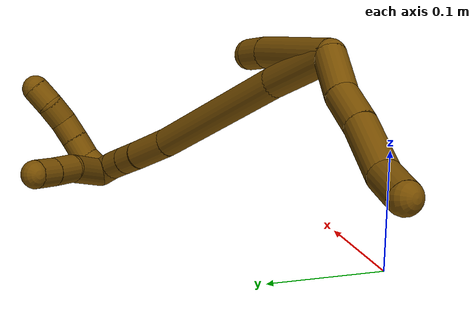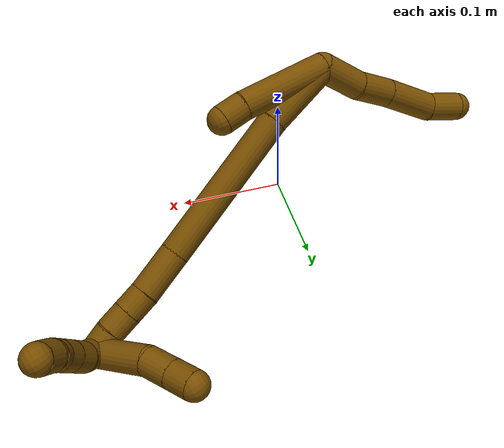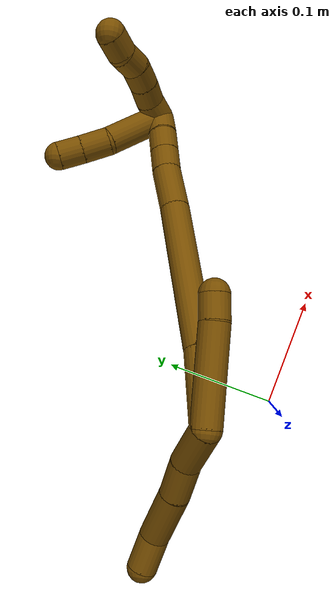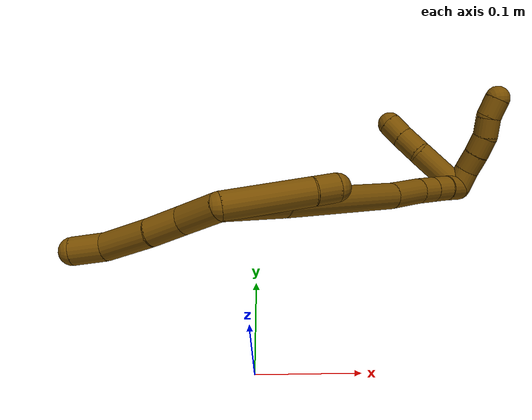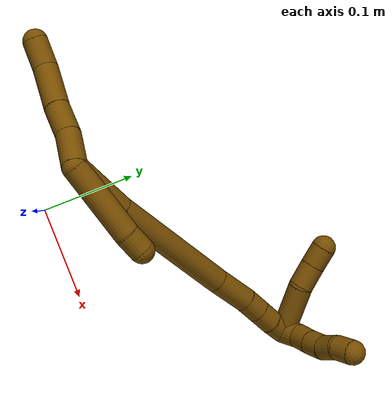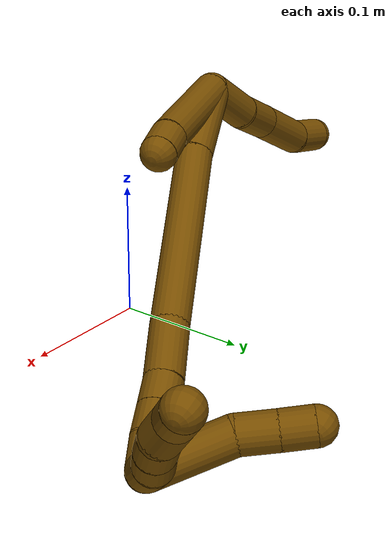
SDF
<sdf version="1.7">
 <world name="default">
  <model name="12">
   <static>0</static>
   <link name="12">
    <collision name="collision-cylinder-e_1_2_8">
     <pose>-0.003566 0.01494 0.012186 -0.886587 -0.182901 0.087031</pose>
     <geometry><cylinder><radius>0.0125</radius><length>0.039214</length></cylinder></geometry>
     <surface>
      <friction><ode><mu>1.16</mu><mu2>1.16</mu2><slip1>0</slip1><slip2>0</slip2></ode></friction>
      <contact><ode><kp>1e+06</kp><kd>1</kd><max_vel>0</max_vel><min_depth>0.001</min_depth></ode></contact>
     </surface>
    </collision>
    <visual name="visual-cylinder-e_1_2_8">
     <pose>-0.003566 0.01494 0.012186 -0.886587 -0.182901 0.087031</pose>
     <geometry><cylinder><radius>0.0125</radius><length>0.039214</length></cylinder></geometry>
     <material><ambient>0.466667 0.301961 0 1</ambient></material>
    </visual>
    <collision name="collision-cylinder-e_2_8_9">
     <pose>-0.010713 0.039841 0.03678 -0.67642 -0.221364 0.078139</pose>
     <geometry><cylinder><radius>0.0125</radius><length>0.032618</length></cylinder></geometry>
     <surface>
      <friction><ode><mu>1.16</mu><mu2>1.16</mu2><slip1>0</slip1><slip2>0</slip2></ode></friction>
      <contact><ode><kp>1e+06</kp><kd>1</kd><max_vel>0</max_vel><min_depth>0.001</min_depth></ode></contact>
     </surface>
    </collision>
    <visual name="visual-cylinder-e_2_8_9">
     <pose>-0.010713 0.039841 0.03678 -0.67642 -0.221364 0.078139</pose>
     <geometry><cylinder><radius>0.0125</radius><length>0.032618</length></cylinder></geometry>
     <material><ambient>0.466667 0.301961 0 1</ambient></material>
    </visual>
    <collision name="collision-cylinder-e_3_9_10">
     <pose>-0.018243 0.065972 0.066358 -0.755423 -0.165881 0.065943</pose>
     <geometry><cylinder><radius>0.0125</radius><length>0.047829</length></cylinder></geometry>
     <surface>
      <friction><ode><mu>1.16</mu><mu2>1.16</mu2><slip1>0</slip1><slip2>0</slip2></ode></friction>
      <contact><ode><kp>1e+06</kp><kd>1</kd><max_vel>0</max_vel><min_depth>0.001</min_depth></ode></contact>
     </surface>
    </collision>
    <visual name="visual-cylinder-e_3_9_10">
     <pose>-0.018243 0.065972 0.066358 -0.755423 -0.165881 0.065943</pose>
     <geometry><cylinder><radius>0.0125</radius><length>0.047829</length></cylinder></geometry>
     <material><ambient>0.466667 0.301961 0 1</ambient></material>
    </visual>
    <collision name="collision-cylinder-e_4_10_6">
     <pose>-0.022654 0.089112 0.096995 -0.477552 -0.030482 0.00742</pose>
     <geometry><cylinder><radius>0.0125</radius><length>0.030339</length></cylinder></geometry>
     <surface>
      <friction><ode><mu>1.16</mu><mu2>1.16</mu2><slip1>0</slip1><slip2>0</slip2></ode></friction>
      <contact><ode><kp>1e+06</kp><kd>1</kd><max_vel>0</max_vel><min_depth>0.001</min_depth></ode></contact>
     </surface>
    </collision>
    <visual name="visual-cylinder-e_4_10_6">
     <pose>-0.022654 0.089112 0.096995 -0.477552 -0.030482 0.00742</pose>
     <geometry><cylinder><radius>0.0125</radius><length>0.030339</length></cylinder></geometry>
     <material><ambient>0.466667 0.301961 0 1</ambient></material>
    </visual>
    <collision name="collision-cylinder-e_1_2_11">
     <pose>0.002961 -0.002346 -0.039321 3.082 0.075037 1.79935</pose>
     <geometry><cylinder><radius>0.0125</radius><length>0.079005</length></cylinder></geometry>
     <surface>
      <friction><ode><mu>1.16</mu><mu2>1.16</mu2><slip1>0</slip1><slip2>0</slip2></ode></friction>
      <contact><ode><kp>1e+06</kp><kd>1</kd><max_vel>0</max_vel><min_depth>0.001</min_depth></ode></contact>
     </surface>
    </collision>
    <visual name="visual-cylinder-e_1_2_11">
     <pose>0.002961 -0.002346 -0.039321 3.082 0.075037 1.79935</pose>
     <geometry><cylinder><radius>0.0125</radius><length>0.079005</length></cylinder></geometry>
     <material><ambient>0.466667 0.301961 0 1</ambient></material>
    </visual>
    <collision name="collision-cylinder-e_2_11_5">
     <pose>0.006798 -0.003997 -0.08908 -3.07504 0.083453 -1.79536</pose>
     <geometry><cylinder><radius>0.0125</radius><length>0.020995</length></cylinder></geometry>
     <surface>
      <friction><ode><mu>1.16</mu><mu2>1.16</mu2><slip1>0</slip1><slip2>0</slip2></ode></friction>
      <contact><ode><kp>1e+06</kp><kd>1</kd><max_vel>0</max_vel><min_depth>0.001</min_depth></ode></contact>
     </surface>
    </collision>
    <visual name="visual-cylinder-e_2_11_5">
     <pose>0.006798 -0.003997 -0.08908 -3.07504 0.083453 -1.79536</pose>
     <geometry><cylinder><radius>0.0125</radius><length>0.020995</length></cylinder></geometry>
     <material><ambient>0.466667 0.301961 0 1</ambient></material>
    </visual>
    <collision name="collision-cylinder-e_1_2_12">
     <pose>-0.000447 0.009651 -0.029996 -2.83031 -0.01417 0.090246</pose>
     <geometry><cylinder><radius>0.0125</radius><length>0.063026</length></cylinder></geometry>
     <surface>
      <friction><ode><mu>1.16</mu><mu2>1.16</mu2><slip1>0</slip1><slip2>0</slip2></ode></friction>
      <contact><ode><kp>1e+06</kp><kd>1</kd><max_vel>0</max_vel><min_depth>0.001</min_depth></ode></contact>
     </surface>
    </collision>
    <visual name="visual-cylinder-e_1_2_12">
     <pose>-0.000447 0.009651 -0.029996 -2.83031 -0.01417 0.090246</pose>
     <geometry><cylinder><radius>0.0125</radius><length>0.063026</length></cylinder></geometry>
     <material><ambient>0.466667 0.301961 0 1</ambient></material>
    </visual>
    <collision name="collision-cylinder-e_2_12_13">
     <pose>-8.7e-05 0.046592 -0.122395 -2.72934 0.011837 -0.056594</pose>
     <geometry><cylinder><radius>0.0125</radius><length>0.13623</length></cylinder></geometry>
     <surface>
      <friction><ode><mu>1.16</mu><mu2>1.16</mu2><slip1>0</slip1><slip2>0</slip2></ode></friction>
      <contact><ode><kp>1e+06</kp><kd>1</kd><max_vel>0</max_vel><min_depth>0.001</min_depth></ode></contact>
     </surface>
    </collision>
    <visual name="visual-cylinder-e_2_12_13">
     <pose>-8.7e-05 0.046592 -0.122395 -2.72934 0.011837 -0.056594</pose>
     <geometry><cylinder><radius>0.0125</radius><length>0.13623</length></cylinder></geometry>
     <material><ambient>0.466667 0.301961 0 1</ambient></material>
    </visual>
    <collision name="collision-cylinder-e_3_13_14">
     <pose>0.00237 0.0814 -0.203316 -2.7559 0.082414 -0.416168</pose>
     <geometry><cylinder><radius>0.0125</radius><length>0.040106</length></cylinder></geometry>
     <surface>
      <friction><ode><mu>1.16</mu><mu2>1.16</mu2><slip1>0</slip1><slip2>0</slip2></ode></friction>
      <contact><ode><kp>1e+06</kp><kd>1</kd><max_vel>0</max_vel><min_depth>0.001</min_depth></ode></contact>
     </surface>
    </collision>
    <visual name="visual-cylinder-e_3_13_14">
     <pose>0.00237 0.0814 -0.203316 -2.7559 0.082414 -0.416168</pose>
     <geometry><cylinder><radius>0.0125</radius><length>0.040106</length></cylinder></geometry>
     <material><ambient>0.466667 0.301961 0 1</ambient></material>
    </visual>
    <collision name="collision-cylinder-e_4_14_15">
     <pose>0.004379 0.09199 -0.231514 -2.83432 0.035201 -0.226371</pose>
     <geometry><cylinder><radius>0.0125</radius><length>0.020325</length></cylinder></geometry>
     <surface>
      <friction><ode><mu>1.16</mu><mu2>1.16</mu2><slip1>0</slip1><slip2>0</slip2></ode></friction>
      <contact><ode><kp>1e+06</kp><kd>1</kd><max_vel>0</max_vel><min_depth>0.001</min_depth></ode></contact>
     </surface>
    </collision>
    <visual name="visual-cylinder-e_4_14_15">
     <pose>0.004379 0.09199 -0.231514 -2.83432 0.035201 -0.226371</pose>
     <geometry><cylinder><radius>0.0125</radius><length>0.020325</length></cylinder></geometry>
     <material><ambient>0.466667 0.301961 0 1</ambient></material>
    </visual>
    <collision name="collision-cylinder-e_5_15_16">
     <pose>0.005039 0.098106 -0.250742 -2.833 0.030227 -0.193754</pose>
     <geometry><cylinder><radius>0.0125</radius><length>0.020052</length></cylinder></geometry>
     <surface>
      <friction><ode><mu>1.16</mu><mu2>1.16</mu2><slip1>0</slip1><slip2>0</slip2></ode></friction>
      <contact><ode><kp>1e+06</kp><kd>1</kd><max_vel>0</max_vel><min_depth>0.001</min_depth></ode></contact>
     </surface>
    </collision>
    <visual name="visual-cylinder-e_5_15_16">
     <pose>0.005039 0.098106 -0.250742 -2.833 0.030227 -0.193754</pose>
     <geometry><cylinder><radius>0.0125</radius><length>0.020052</length></cylinder></geometry>
     <material><ambient>0.466667 0.301961 0 1</ambient></material>
    </visual>
    <collision name="collision-cylinder-e_6_16_1">
     <pose>0.005395 0.10529 -0.269536 -2.72056 0.005225 -0.02445</pose>
     <geometry><cylinder><radius>0.0125</radius><length>0.02026</length></cylinder></geometry>
     <surface>
      <friction><ode><mu>1.16</mu><mu2>1.16</mu2><slip1>0</slip1><slip2>0</slip2></ode></friction>
      <contact><ode><kp>1e+06</kp><kd>1</kd><max_vel>0</max_vel><min_depth>0.001</min_depth></ode></contact>
     </surface>
    </collision>
    <visual name="visual-cylinder-e_6_16_1">
     <pose>0.005395 0.10529 -0.269536 -2.72056 0.005225 -0.02445</pose>
     <geometry><cylinder><radius>0.0125</radius><length>0.02026</length></cylinder></geometry>
     <material><ambient>0.466667 0.301961 0 1</ambient></material>
    </visual>
    <collision name="collision-cylinder-e_1_1_17">
     <pose>0.013865 0.105994 -0.282948 2.45205 1.0003 1.97886</pose>
     <geometry><cylinder><radius>0.0125</radius><length>0.02</length></cylinder></geometry>
     <surface>
      <friction><ode><mu>1.16</mu><mu2>1.16</mu2><slip1>0</slip1><slip2>0</slip2></ode></friction>
      <contact><ode><kp>1e+06</kp><kd>1</kd><max_vel>0</max_vel><min_depth>0.001</min_depth></ode></contact>
     </surface>
    </collision>
    <visual name="visual-cylinder-e_1_1_17">
     <pose>0.013865 0.105994 -0.282948 2.45205 1.0003 1.97886</pose>
     <geometry><cylinder><radius>0.0125</radius><length>0.02</length></cylinder></geometry>
     <material><ambient>0.466667 0.301961 0 1</ambient></material>
    </visual>
    <collision name="collision-cylinder-e_2_17_18">
     <pose>0.029872 0.096972 -0.290458 2.11011 0.861905 1.36282</pose>
     <geometry><cylinder><radius>0.0125</radius><length>0.02</length></cylinder></geometry>
     <surface>
      <friction><ode><mu>1.16</mu><mu2>1.16</mu2><slip1>0</slip1><slip2>0</slip2></ode></friction>
      <contact><ode><kp>1e+06</kp><kd>1</kd><max_vel>0</max_vel><min_depth>0.001</min_depth></ode></contact>
     </surface>
    </collision>
    <visual name="visual-cylinder-e_2_17_18">
     <pose>0.029872 0.096972 -0.290458 2.11011 0.861905 1.36282</pose>
     <geometry><cylinder><radius>0.0125</radius><length>0.02</length></cylinder></geometry>
     <material><ambient>0.466667 0.301961 0 1</ambient></material>
    </visual>
    <collision name="collision-cylinder-e_3_18_19">
     <pose>0.045476 0.086144 -0.296682 2.07335 0.929489 1.40628</pose>
     <geometry><cylinder><radius>0.0125</radius><length>0.02</length></cylinder></geometry>
     <surface>
      <friction><ode><mu>1.16</mu><mu2>1.16</mu2><slip1>0</slip1><slip2>0</slip2></ode></friction>
      <contact><ode><kp>1e+06</kp><kd>1</kd><max_vel>0</max_vel><min_depth>0.001</min_depth></ode></contact>
     </surface>
    </collision>
    <visual name="visual-cylinder-e_3_18_19">
     <pose>0.045476 0.086144 -0.296682 2.07335 0.929489 1.40628</pose>
     <geometry><cylinder><radius>0.0125</radius><length>0.02</length></cylinder></geometry>
     <material><ambient>0.466667 0.301961 0 1</ambient></material>
    </visual>
    <collision name="collision-cylinder-e_4_19_20">
     <pose>0.062704 0.077079 -0.300253 1.74928 1.17195 1.34238</pose>
     <geometry><cylinder><radius>0.0125</radius><length>0.02</length></cylinder></geometry>
     <surface>
      <friction><ode><mu>1.16</mu><mu2>1.16</mu2><slip1>0</slip1><slip2>0</slip2></ode></friction>
      <contact><ode><kp>1e+06</kp><kd>1</kd><max_vel>0</max_vel><min_depth>0.001</min_depth></ode></contact>
     </surface>
    </collision>
    <visual name="visual-cylinder-e_4_19_20">
     <pose>0.062704 0.077079 -0.300253 1.74928 1.17195 1.34238</pose>
     <geometry><cylinder><radius>0.0125</radius><length>0.02</length></cylinder></geometry>
     <material><ambient>0.466667 0.301961 0 1</ambient></material>
    </visual>
    <collision name="collision-cylinder-e_5_20_4">
     <pose>0.080349 0.069293 -0.304578 2.31289 1.00284 1.78923</pose>
     <geometry><cylinder><radius>0.0125</radius><length>0.02</length></cylinder></geometry>
     <surface>
      <friction><ode><mu>1.16</mu><mu2>1.16</mu2><slip1>0</slip1><slip2>0</slip2></ode></friction>
      <contact><ode><kp>1e+06</kp><kd>1</kd><max_vel>0</max_vel><min_depth>0.001</min_depth></ode></contact>
     </surface>
    </collision>
    <visual name="visual-cylinder-e_5_20_4">
     <pose>0.080349 0.069293 -0.304578 2.31289 1.00284 1.78923</pose>
     <geometry><cylinder><radius>0.0125</radius><length>0.02</length></cylinder></geometry>
     <material><ambient>0.466667 0.301961 0 1</ambient></material>
    </visual>
    <collision name="collision-cylinder-e_1_1_21">
     <pose>0.025606 0.116935 -0.262615 -0.434624 0.846788 -0.198353</pose>
     <geometry><cylinder><radius>0.0125</radius><length>0.053815</length></cylinder></geometry>
     <surface>
      <friction><ode><mu>1.16</mu><mu2>1.16</mu2><slip1>0</slip1><slip2>0</slip2></ode></friction>
      <contact><ode><kp>1e+06</kp><kd>1</kd><max_vel>0</max_vel><min_depth>0.001</min_depth></ode></contact>
     </surface>
    </collision>
    <visual name="visual-cylinder-e_1_1_21">
     <pose>0.025606 0.116935 -0.262615 -0.434624 0.846788 -0.198353</pose>
     <geometry><cylinder><radius>0.0125</radius><length>0.053815</length></cylinder></geometry>
     <material><ambient>0.466667 0.301961 0 1</ambient></material>
    </visual>
    <collision name="collision-cylinder-e_2_21_22">
     <pose>0.055049 0.13073 -0.241038 -0.860493 0.841502 -0.405077</pose>
     <geometry><cylinder><radius>0.0125</radius><length>0.024905</length></cylinder></geometry>
     <surface>
      <friction><ode><mu>1.16</mu><mu2>1.16</mu2><slip1>0</slip1><slip2>0</slip2></ode></friction>
      <contact><ode><kp>1e+06</kp><kd>1</kd><max_vel>0</max_vel><min_depth>0.001</min_depth></ode></contact>
     </surface>
    </collision>
    <visual name="visual-cylinder-e_2_21_22">
     <pose>0.055049 0.13073 -0.241038 -0.860493 0.841502 -0.405077</pose>
     <geometry><cylinder><radius>0.0125</radius><length>0.024905</length></cylinder></geometry>
     <material><ambient>0.466667 0.301961 0 1</ambient></material>
    </visual>
    <collision name="collision-cylinder-e_3_22_3">
     <pose>0.072569 0.142064 -0.231158 -0.845573 0.885024 -0.420101</pose>
     <geometry><cylinder><radius>0.0125</radius><length>0.02128</length></cylinder></geometry>
     <surface>
      <friction><ode><mu>1.16</mu><mu2>1.16</mu2><slip1>0</slip1><slip2>0</slip2></ode></friction>
      <contact><ode><kp>1e+06</kp><kd>1</kd><max_vel>0</max_vel><min_depth>0.001</min_depth></ode></contact>
     </surface>
    </collision>
    <visual name="visual-cylinder-e_3_22_3">
     <pose>0.072569 0.142064 -0.231158 -0.845573 0.885024 -0.420101</pose>
     <geometry><cylinder><radius>0.0125</radius><length>0.02128</length></cylinder></geometry>
     <material><ambient>0.466667 0.301961 0 1</ambient></material>
    </visual>
    <collision name="collision-sphere-3">
     <pose>0.080804 0.147106 -0.226689 0 -0 0</pose>
     <geometry><sphere><radius>0.0125</radius></sphere></geometry>
     <surface>
      <friction><ode><mu>1.16</mu><mu2>1.16</mu2><slip1>0</slip1><slip2>0</slip2></ode></friction>
      <contact><ode><kp>1e+06</kp><kd>1</kd><max_vel>0</max_vel><min_depth>0.001</min_depth></ode></contact>
     </surface>
    </collision>
    <visual name="visual-sphere-3">
     <pose>0.080804 0.147106 -0.226689 0 -0 0</pose>
     <geometry><sphere><radius>0.0125</radius></sphere></geometry>
     <material><ambient>0.466667 0.301961 0 1</ambient></material>
    </visual>
    <collision name="collision-sphere-22">
     <pose>0.064334 0.137021 -0.235628 0 -0 0</pose>
     <geometry><sphere><radius>0.0125</radius></sphere></geometry>
     <surface>
      <friction><ode><mu>1.16</mu><mu2>1.16</mu2><slip1>0</slip1><slip2>0</slip2></ode></friction>
      <contact><ode><kp>1e+06</kp><kd>1</kd><max_vel>0</max_vel><min_depth>0.001</min_depth></ode></contact>
     </surface>
    </collision>
    <visual name="visual-sphere-22">
     <pose>0.064334 0.137021 -0.235628 0 -0 0</pose>
     <geometry><sphere><radius>0.0125</radius></sphere></geometry>
     <material><ambient>0.466667 0.301961 0 1</ambient></material>
    </visual>
    <collision name="collision-sphere-21">
     <pose>0.045764 0.124439 -0.246449 0 -0 0</pose>
     <geometry><sphere><radius>0.0125</radius></sphere></geometry>
     <surface>
      <friction><ode><mu>1.16</mu><mu2>1.16</mu2><slip1>0</slip1><slip2>0</slip2></ode></friction>
      <contact><ode><kp>1e+06</kp><kd>1</kd><max_vel>0</max_vel><min_depth>0.001</min_depth></ode></contact>
     </surface>
    </collision>
    <visual name="visual-sphere-21">
     <pose>0.045764 0.124439 -0.246449 0 -0 0</pose>
     <geometry><sphere><radius>0.0125</radius></sphere></geometry>
     <material><ambient>0.466667 0.301961 0 1</ambient></material>
    </visual>
    <collision name="collision-sphere-4">
     <pose>0.088779 0.065328 -0.308214 0 -0 0</pose>
     <geometry><sphere><radius>0.0125</radius></sphere></geometry>
     <surface>
      <friction><ode><mu>1.16</mu><mu2>1.16</mu2><slip1>0</slip1><slip2>0</slip2></ode></friction>
      <contact><ode><kp>1e+06</kp><kd>1</kd><max_vel>0</max_vel><min_depth>0.001</min_depth></ode></contact>
     </surface>
    </collision>
    <visual name="visual-sphere-4">
     <pose>0.088779 0.065328 -0.308214 0 -0 0</pose>
     <geometry><sphere><radius>0.0125</radius></sphere></geometry>
     <material><ambient>0.466667 0.301961 0 1</ambient></material>
    </visual>
    <collision name="collision-sphere-20">
     <pose>0.071919 0.073257 -0.300943 0 -0 0</pose>
     <geometry><sphere><radius>0.0125</radius></sphere></geometry>
     <surface>
      <friction><ode><mu>1.16</mu><mu2>1.16</mu2><slip1>0</slip1><slip2>0</slip2></ode></friction>
      <contact><ode><kp>1e+06</kp><kd>1</kd><max_vel>0</max_vel><min_depth>0.001</min_depth></ode></contact>
     </surface>
    </collision>
    <visual name="visual-sphere-20">
     <pose>0.071919 0.073257 -0.300943 0 -0 0</pose>
     <geometry><sphere><radius>0.0125</radius></sphere></geometry>
     <material><ambient>0.466667 0.301961 0 1</ambient></material>
    </visual>
    <collision name="collision-sphere-11">
     <pose>0.005923 -0.004692 -0.078642 0 -0 0</pose>
     <geometry><sphere><radius>0.0125</radius></sphere></geometry>
     <surface>
      <friction><ode><mu>1.16</mu><mu2>1.16</mu2><slip1>0</slip1><slip2>0</slip2></ode></friction>
      <contact><ode><kp>1e+06</kp><kd>1</kd><max_vel>0</max_vel><min_depth>0.001</min_depth></ode></contact>
     </surface>
    </collision>
    <visual name="visual-sphere-11">
     <pose>0.005923 -0.004692 -0.078642 0 -0 0</pose>
     <geometry><sphere><radius>0.0125</radius></sphere></geometry>
     <material><ambient>0.466667 0.301961 0 1</ambient></material>
    </visual>
    <collision name="collision-sphere-6">
     <pose>-0.023116 0.09608 0.110461 0 -0 0</pose>
     <geometry><sphere><radius>0.0125</radius></sphere></geometry>
     <surface>
      <friction><ode><mu>1.16</mu><mu2>1.16</mu2><slip1>0</slip1><slip2>0</slip2></ode></friction>
      <contact><ode><kp>1e+06</kp><kd>1</kd><max_vel>0</max_vel><min_depth>0.001</min_depth></ode></contact>
     </surface>
    </collision>
    <visual name="visual-sphere-6">
     <pose>-0.023116 0.09608 0.110461 0 -0 0</pose>
     <geometry><sphere><radius>0.0125</radius></sphere></geometry>
     <material><ambient>0.466667 0.301961 0 1</ambient></material>
    </visual>
    <collision name="collision-sphere-10">
     <pose>-0.022192 0.082143 0.083528 0 -0 0</pose>
     <geometry><sphere><radius>0.0125</radius></sphere></geometry>
     <surface>
      <friction><ode><mu>1.16</mu><mu2>1.16</mu2><slip1>0</slip1><slip2>0</slip2></ode></friction>
      <contact><ode><kp>1e+06</kp><kd>1</kd><max_vel>0</max_vel><min_depth>0.001</min_depth></ode></contact>
     </surface>
    </collision>
    <visual name="visual-sphere-10">
     <pose>-0.022192 0.082143 0.083528 0 -0 0</pose>
     <geometry><sphere><radius>0.0125</radius></sphere></geometry>
     <material><ambient>0.466667 0.301961 0 1</ambient></material>
    </visual>
    <collision name="collision-sphere-9">
     <pose>-0.014294 0.049801 0.049188 0 -0 0</pose>
     <geometry><sphere><radius>0.0125</radius></sphere></geometry>
     <surface>
      <friction><ode><mu>1.16</mu><mu2>1.16</mu2><slip1>0</slip1><slip2>0</slip2></ode></friction>
      <contact><ode><kp>1e+06</kp><kd>1</kd><max_vel>0</max_vel><min_depth>0.001</min_depth></ode></contact>
     </surface>
    </collision>
    <visual name="visual-sphere-9">
     <pose>-0.014294 0.049801 0.049188 0 -0 0</pose>
     <geometry><sphere><radius>0.0125</radius></sphere></geometry>
     <material><ambient>0.466667 0.301961 0 1</ambient></material>
    </visual>
    <collision name="collision-sphere-2">
     <geometry><sphere><radius>0.0125</radius></sphere></geometry>
     <surface>
      <friction><ode><mu>1.16</mu><mu2>1.16</mu2><slip1>0</slip1><slip2>0</slip2></ode></friction>
      <contact><ode><kp>1e+06</kp><kd>1</kd><max_vel>0</max_vel><min_depth>0.001</min_depth></ode></contact>
     </surface>
    </collision>
    <visual name="visual-sphere-2">
     <geometry><sphere><radius>0.0125</radius></sphere></geometry>
     <material><ambient>0.466667 0.301961 0 1</ambient></material>
    </visual>
    <collision name="collision-sphere-19">
     <pose>0.053489 0.080901 -0.299564 0 -0 0</pose>
     <geometry><sphere><radius>0.0125</radius></sphere></geometry>
     <surface>
      <friction><ode><mu>1.16</mu><mu2>1.16</mu2><slip1>0</slip1><slip2>0</slip2></ode></friction>
      <contact><ode><kp>1e+06</kp><kd>1</kd><max_vel>0</max_vel><min_depth>0.001</min_depth></ode></contact>
     </surface>
    </collision>
    <visual name="visual-sphere-19">
     <pose>0.053489 0.080901 -0.299564 0 -0 0</pose>
     <geometry><sphere><radius>0.0125</radius></sphere></geometry>
     <material><ambient>0.466667 0.301961 0 1</ambient></material>
    </visual>
    <collision name="collision-sphere-8">
     <pose>-0.007132 0.029881 0.024372 0 -0 0</pose>
     <geometry><sphere><radius>0.0125</radius></sphere></geometry>
     <surface>
      <friction><ode><mu>1.16</mu><mu2>1.16</mu2><slip1>0</slip1><slip2>0</slip2></ode></friction>
      <contact><ode><kp>1e+06</kp><kd>1</kd><max_vel>0</max_vel><min_depth>0.001</min_depth></ode></contact>
     </surface>
    </collision>
    <visual name="visual-sphere-8">
     <pose>-0.007132 0.029881 0.024372 0 -0 0</pose>
     <geometry><sphere><radius>0.0125</radius></sphere></geometry>
     <material><ambient>0.466667 0.301961 0 1</ambient></material>
    </visual>
    <collision name="collision-sphere-5">
     <pose>0.007673 -0.003301 -0.099518 0 -0 0</pose>
     <geometry><sphere><radius>0.0125</radius></sphere></geometry>
     <surface>
      <friction><ode><mu>1.16</mu><mu2>1.16</mu2><slip1>0</slip1><slip2>0</slip2></ode></friction>
      <contact><ode><kp>1e+06</kp><kd>1</kd><max_vel>0</max_vel><min_depth>0.001</min_depth></ode></contact>
     </surface>
    </collision>
    <visual name="visual-sphere-5">
     <pose>0.007673 -0.003301 -0.099518 0 -0 0</pose>
     <geometry><sphere><radius>0.0125</radius></sphere></geometry>
     <material><ambient>0.466667 0.301961 0 1</ambient></material>
    </visual>
    <collision name="collision-sphere-12">
     <pose>-0.000893 0.019302 -0.059991 0 -0 0</pose>
     <geometry><sphere><radius>0.0125</radius></sphere></geometry>
     <surface>
      <friction><ode><mu>1.16</mu><mu2>1.16</mu2><slip1>0</slip1><slip2>0</slip2></ode></friction>
      <contact><ode><kp>1e+06</kp><kd>1</kd><max_vel>0</max_vel><min_depth>0.001</min_depth></ode></contact>
     </surface>
    </collision>
    <visual name="visual-sphere-12">
     <pose>-0.000893 0.019302 -0.059991 0 -0 0</pose>
     <geometry><sphere><radius>0.0125</radius></sphere></geometry>
     <material><ambient>0.466667 0.301961 0 1</ambient></material>
    </visual>
    <collision name="collision-sphere-13">
     <pose>0.000719 0.073882 -0.1848 0 -0 0</pose>
     <geometry><sphere><radius>0.0125</radius></sphere></geometry>
     <surface>
      <friction><ode><mu>1.16</mu><mu2>1.16</mu2><slip1>0</slip1><slip2>0</slip2></ode></friction>
      <contact><ode><kp>1e+06</kp><kd>1</kd><max_vel>0</max_vel><min_depth>0.001</min_depth></ode></contact>
     </surface>
    </collision>
    <visual name="visual-sphere-13">
     <pose>0.000719 0.073882 -0.1848 0 -0 0</pose>
     <geometry><sphere><radius>0.0125</radius></sphere></geometry>
     <material><ambient>0.466667 0.301961 0 1</ambient></material>
    </visual>
    <collision name="collision-sphere-14">
     <pose>0.004021 0.088919 -0.221833 0 -0 0</pose>
     <geometry><sphere><radius>0.0125</radius></sphere></geometry>
     <surface>
      <friction><ode><mu>1.16</mu><mu2>1.16</mu2><slip1>0</slip1><slip2>0</slip2></ode></friction>
      <contact><ode><kp>1e+06</kp><kd>1</kd><max_vel>0</max_vel><min_depth>0.001</min_depth></ode></contact>
     </surface>
    </collision>
    <visual name="visual-sphere-14">
     <pose>0.004021 0.088919 -0.221833 0 -0 0</pose>
     <geometry><sphere><radius>0.0125</radius></sphere></geometry>
     <material><ambient>0.466667 0.301961 0 1</ambient></material>
    </visual>
    <collision name="collision-sphere-15">
     <pose>0.004736 0.095062 -0.241194 0 -0 0</pose>
     <geometry><sphere><radius>0.0125</radius></sphere></geometry>
     <surface>
      <friction><ode><mu>1.16</mu><mu2>1.16</mu2><slip1>0</slip1><slip2>0</slip2></ode></friction>
      <contact><ode><kp>1e+06</kp><kd>1</kd><max_vel>0</max_vel><min_depth>0.001</min_depth></ode></contact>
     </surface>
    </collision>
    <visual name="visual-sphere-15">
     <pose>0.004736 0.095062 -0.241194 0 -0 0</pose>
     <geometry><sphere><radius>0.0125</radius></sphere></geometry>
     <material><ambient>0.466667 0.301961 0 1</ambient></material>
    </visual>
    <collision name="collision-sphere-16">
     <pose>0.005342 0.10115 -0.26029 0 -0 0</pose>
     <geometry><sphere><radius>0.0125</radius></sphere></geometry>
     <surface>
      <friction><ode><mu>1.16</mu><mu2>1.16</mu2><slip1>0</slip1><slip2>0</slip2></ode></friction>
      <contact><ode><kp>1e+06</kp><kd>1</kd><max_vel>0</max_vel><min_depth>0.001</min_depth></ode></contact>
     </surface>
    </collision>
    <visual name="visual-sphere-16">
     <pose>0.005342 0.10115 -0.26029 0 -0 0</pose>
     <geometry><sphere><radius>0.0125</radius></sphere></geometry>
     <material><ambient>0.466667 0.301961 0 1</ambient></material>
    </visual>
    <collision name="collision-sphere-1">
     <pose>0.005448 0.10943 -0.278781 0 -0 0</pose>
     <geometry><sphere><radius>0.0125</radius></sphere></geometry>
     <surface>
      <friction><ode><mu>1.16</mu><mu2>1.16</mu2><slip1>0</slip1><slip2>0</slip2></ode></friction>
      <contact><ode><kp>1e+06</kp><kd>1</kd><max_vel>0</max_vel><min_depth>0.001</min_depth></ode></contact>
     </surface>
    </collision>
    <visual name="visual-sphere-1">
     <pose>0.005448 0.10943 -0.278781 0 -0 0</pose>
     <geometry><sphere><radius>0.0125</radius></sphere></geometry>
     <material><ambient>0.466667 0.301961 0 1</ambient></material>
    </visual>
    <collision name="collision-sphere-18">
     <pose>0.037463 0.091387 -0.293801 0 -0 0</pose>
     <geometry><sphere><radius>0.0125</radius></sphere></geometry>
     <surface>
      <friction><ode><mu>1.16</mu><mu2>1.16</mu2><slip1>0</slip1><slip2>0</slip2></ode></friction>
      <contact><ode><kp>1e+06</kp><kd>1</kd><max_vel>0</max_vel><min_depth>0.001</min_depth></ode></contact>
     </surface>
    </collision>
    <visual name="visual-sphere-18">
     <pose>0.037463 0.091387 -0.293801 0 -0 0</pose>
     <geometry><sphere><radius>0.0125</radius></sphere></geometry>
     <material><ambient>0.466667 0.301961 0 1</ambient></material>
    </visual>
    <collision name="collision-sphere-17">
     <pose>0.022281 0.102558 -0.287114 0 -0 0</pose>
     <geometry><sphere><radius>0.0125</radius></sphere></geometry>
     <surface>
      <friction><ode><mu>1.16</mu><mu2>1.16</mu2><slip1>0</slip1><slip2>0</slip2></ode></friction>
      <contact><ode><kp>1e+06</kp><kd>1</kd><max_vel>0</max_vel><min_depth>0.001</min_depth></ode></contact>
     </surface>
    </collision>
    <visual name="visual-sphere-17">
     <pose>0.022281 0.102558 -0.287114 0 -0 0</pose>
     <geometry><sphere><radius>0.0125</radius></sphere></geometry>
     <material><ambient>0.466667 0.301961 0 1</ambient></material>
    </visual>
    <inertial>
     <pose>0.010161 0.059929 -0.124865 0 -0 0</pose>
     <mass>0.75</mass>
     <inertia>
      <ixx>0.000318</ixx>
      <ixy>0</ixy>
      <ixz>0</ixz>
      <iyy>-0.000132</iyy>
      <iyz>0</iyz>
      <izz>-0.000157</izz>
     </inertia>
    </inertial>
   </link>
   <pose>-0.020259 0.062556 0.181772 -1.31354 -0.591628 1.67</pose>
  </model>
 </world>
</sdf>
